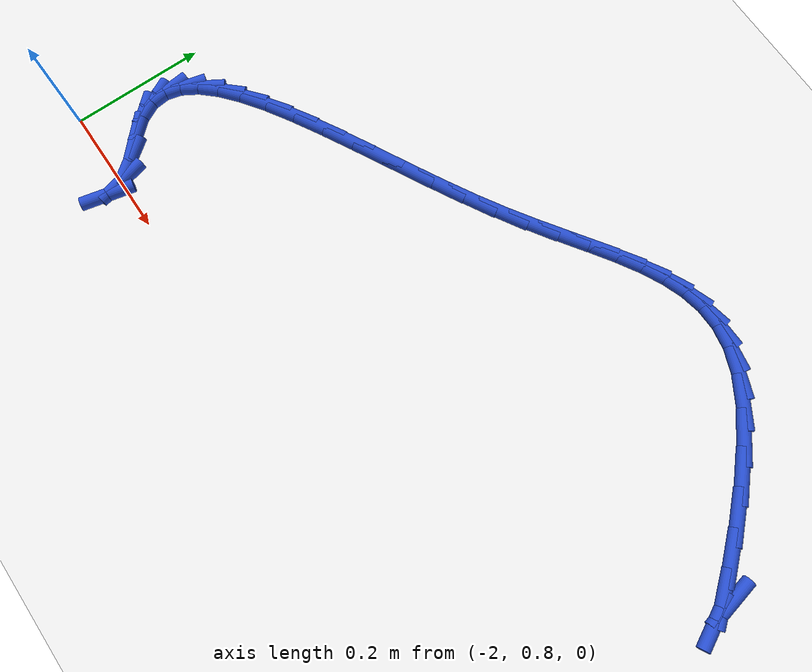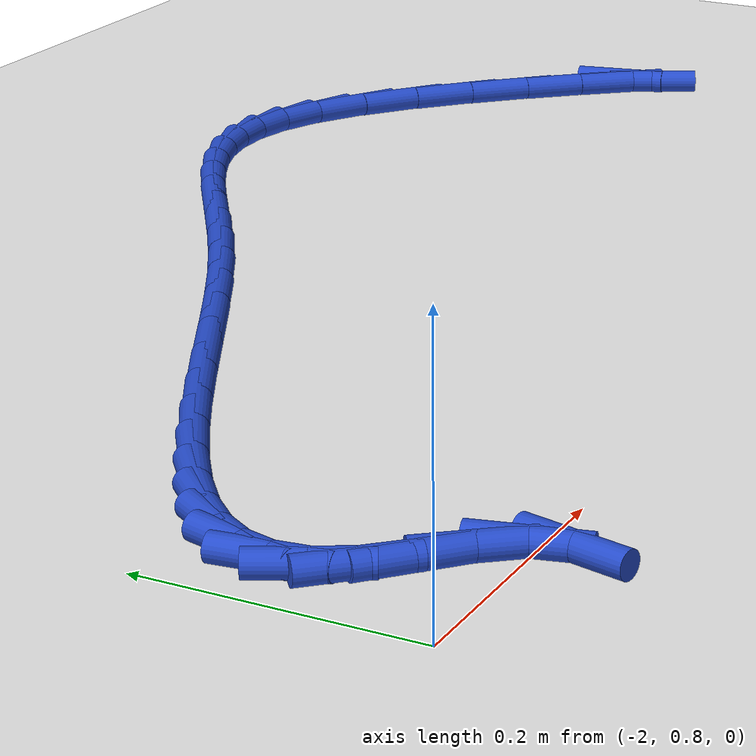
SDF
<sdf version="1.6">
 <world name="default">
  <model name="ground_plane">
   <static>1</static>
   <link name="link">
    <collision name="collision">
     <geometry><plane><normal>0 0 1</normal><size>100 100</size></plane></geometry>
     <surface><friction><ode><mu>100</mu><mu2>50</mu2></ode></friction></surface>
    </collision>
    <visual name="visual">
     <cast_shadows>0</cast_shadows>
     <geometry><plane><normal>0 0 1</normal><size>100 100</size></plane></geometry>
     <material>
      <script><uri>file://media/materials/scripts/gazebo.material</uri><name>Gazebo/WhiteGlow</name></script>
     </material>
    </visual>
   </link>
  </model>
  <model name="line">
   <link name="link_48">
    <pose>-0.9167478533488701 1.1537578580263017 0.01 0 1.57 -1.3605881898114365</pose>
    <collision name="collision">
     <geometry><cylinder><radius>0.01</radius><length>0.08</length></cylinder></geometry>
    </collision>
    <visual name="visual">
     <material>
      <script><name>Gazebo/Blue</name><uri>file://media/materials/scripts/gazebo.material</uri></script>
     </material>
     <geometry><cylinder><radius>0.01</radius><length>0.08</length></cylinder></geometry>
    </visual>
   </link>
   <link name="link_49">
    <pose>-0.9104036037454868 1.124022911377311 0.01 0 1.57 -1.0990846913617078</pose>
    <collision name="collision">
     <geometry><cylinder><radius>0.01</radius><length>0.08</length></cylinder></geometry>
    </collision>
    <visual name="visual">
     <material>
      <script><name>Gazebo/Blue</name><uri>file://media/materials/scripts/gazebo.material</uri></script>
     </material>
     <geometry><cylinder><radius>0.01</radius><length>0.08</length></cylinder></geometry>
    </visual>
   </link>
   <link name="link_59">
    <pose>-0.9263351295932759 1.1499166084896524 0.01 0 1.57 -0.8809924382866111</pose>
    <collision name="collision">
     <geometry><cylinder><radius>0.01</radius><length>0.08</length></cylinder></geometry>
    </collision>
    <visual name="visual">
     <material>
      <script><name>Gazebo/Blue</name><uri>file://media/materials/scripts/gazebo.material</uri></script>
     </material>
     <geometry><cylinder><radius>0.01</radius><length>0.08</length></cylinder></geometry>
    </visual>
   </link>
   <link name="link_60">
    <pose>-0.9600480873910072 1.1907804797849026 0.01 0 1.57 -0.8454182919945205</pose>
    <collision name="collision">
     <geometry><cylinder><radius>0.01</radius><length>0.08</length></cylinder></geometry>
    </collision>
    <visual name="visual">
     <material>
      <script><name>Gazebo/Blue</name><uri>file://media/materials/scripts/gazebo.material</uri></script>
     </material>
     <geometry><cylinder><radius>0.01</radius><length>0.08</length></cylinder></geometry>
    </visual>
   </link>
   <link name="link_61">
    <pose>-0.9963809403602805 1.2317591610567717 0.01 0 1.57 -0.8013040010850668</pose>
    <collision name="collision">
     <geometry><cylinder><radius>0.01</radius><length>0.08</length></cylinder></geometry>
    </collision>
    <visual name="visual">
     <material>
      <script><name>Gazebo/Blue</name><uri>file://media/materials/scripts/gazebo.material</uri></script>
     </material>
     <geometry><cylinder><radius>0.01</radius><length>0.08</length></cylinder></geometry>
    </visual>
   </link>
   <link name="link_62">
    <pose>-1.0343130611836548 1.270917574828007 0.01 0 1.57 -0.7433781073934148</pose>
    <collision name="collision">
     <geometry><cylinder><radius>0.01</radius><length>0.08</length></cylinder></geometry>
    </collision>
    <visual name="visual">
     <material>
      <script><name>Gazebo/Blue</name><uri>file://media/materials/scripts/gazebo.material</uri></script>
     </material>
     <geometry><cylinder><radius>0.01</radius><length>0.08</length></cylinder></geometry>
    </visual>
   </link>
   <link name="link_63">
    <pose>-1.072823822543691 1.3063206436213581 0.01 0 1.57 -0.6627365604325098</pose>
    <collision name="collision">
     <geometry><cylinder><radius>0.01</radius><length>0.08</length></cylinder></geometry>
    </collision>
    <visual name="visual">
     <material>
      <script><name>Gazebo/Blue</name><uri>file://media/materials/scripts/gazebo.material</uri></script>
     </material>
     <geometry><cylinder><radius>0.01</radius><length>0.08</length></cylinder></geometry>
    </visual>
   </link>
   <link name="link_64">
    <pose>-1.1108925971229486 1.3360332899595744 0.01 0 1.57 -0.5434095359581331</pose>
    <collision name="collision">
     <geometry><cylinder><radius>0.01</radius><length>0.08</length></cylinder></geometry>
    </collision>
    <visual name="visual">
     <material>
      <script><name>Gazebo/Blue</name><uri>file://media/materials/scripts/gazebo.material</uri></script>
     </material>
     <geometry><cylinder><radius>0.01</radius><length>0.08</length></cylinder></geometry>
    </visual>
   </link>
   <link name="link_65">
    <pose>-1.1475184767681623 1.3581580231236203 0.01 0 1.57 -0.3784171484410555</pose>
    <collision name="collision">
     <geometry><cylinder><radius>0.01</radius><length>0.08</length></cylinder></geometry>
    </collision>
    <visual name="visual">
     <material>
      <script><name>Gazebo/Blue</name><uri>file://media/materials/scripts/gazebo.material</uri></script>
     </material>
     <geometry><cylinder><radius>0.01</radius><length>0.08</length></cylinder></geometry>
    </visual>
   </link>
   <link name="link_66">
    <pose>-1.182330791656989 1.3719986515750053 0.01 0 1.57 -0.18613815783827042</pose>
    <collision name="collision">
     <geometry><cylinder><radius>0.01</radius><length>0.08</length></cylinder></geometry>
    </collision>
    <visual name="visual">
     <material>
      <script><name>Gazebo/Blue</name><uri>file://media/materials/scripts/gazebo.material</uri></script>
     </material>
     <geometry><cylinder><radius>0.01</radius><length>0.08</length></cylinder></geometry>
    </visual>
   </link>
   <link name="link_67">
    <pose>-1.2157064197040677 1.3782838867679512 0.01 0 1.57 0.014175235118178298</pose>
    <collision name="collision">
     <geometry><cylinder><radius>0.01</radius><length>0.08</length></cylinder></geometry>
    </collision>
    <visual name="visual">
     <material>
      <script><name>Gazebo/Blue</name><uri>file://media/materials/scripts/gazebo.material</uri></script>
     </material>
     <geometry><cylinder><radius>0.01</radius><length>0.08</length></cylinder></geometry>
    </visual>
   </link>
   <link name="link_68">
    <pose>-1.248065634384868 1.377825156565865 0.01 0 1.57 0.19856539048404523</pose>
    <collision name="collision">
     <geometry><cylinder><radius>0.01</radius><length>0.08</length></cylinder></geometry>
    </collision>
    <visual name="visual">
     <material>
      <script><name>Gazebo/Blue</name><uri>file://media/materials/scripts/gazebo.material</uri></script>
     </material>
     <geometry><cylinder><radius>0.01</radius><length>0.08</length></cylinder></geometry>
    </visual>
   </link>
   <link name="link_69">
    <pose>-1.2798287091748588 1.371433888832153 0.01 0 1.57 0.3495011470274727</pose>
    <collision name="collision">
     <geometry><cylinder><radius>0.01</radius><length>0.08</length></cylinder></geometry>
    </collision>
    <visual name="visual">
     <material>
      <script><name>Gazebo/Blue</name><uri>file://media/materials/scripts/gazebo.material</uri></script>
     </material>
     <geometry><cylinder><radius>0.01</radius><length>0.08</length></cylinder></geometry>
    </visual>
   </link>
   <link name="link_70">
    <pose>-1.3114159175495104 1.3599215114302228 0.01 0 1.57 0.4612887238114414</pose>
    <collision name="collision">
     <geometry><cylinder><radius>0.01</radius><length>0.08</length></cylinder></geometry>
    </collision>
    <visual name="visual">
     <material>
      <script><name>Gazebo/Blue</name><uri>file://media/materials/scripts/gazebo.material</uri></script>
     </material>
     <geometry><cylinder><radius>0.01</radius><length>0.08</length></cylinder></geometry>
    </visual>
   </link>
   <link name="link_71">
    <pose>-1.3432475329842921 1.3440994522234815 0.01 0 1.57 0.5363943340565612</pose>
    <collision name="collision">
     <geometry><cylinder><radius>0.01</radius><length>0.08</length></cylinder></geometry>
    </collision>
    <visual name="visual">
     <material>
      <script><name>Gazebo/Blue</name><uri>file://media/materials/scripts/gazebo.material</uri></script>
     </material>
     <geometry><cylinder><radius>0.01</radius><length>0.08</length></cylinder></geometry>
    </visual>
   </link>
   <link name="link_72">
    <pose>-1.3757438289546742 1.3247791390753352 0.01 0 1.57 0.580120079423631</pose>
    <collision name="collision">
     <geometry><cylinder><radius>0.01</radius><length>0.08</length></cylinder></geometry>
    </collision>
    <visual name="visual">
     <material>
      <script><name>Gazebo/Blue</name><uri>file://media/materials/scripts/gazebo.material</uri></script>
     </material>
     <geometry><cylinder><radius>0.01</radius><length>0.08</length></cylinder></geometry>
    </visual>
   </link>
   <link name="link_73">
    <pose>-1.4093250789361251 1.3027719998491927 0.01 0 1.57 0.5976390452263526</pose>
    <collision name="collision">
     <geometry><cylinder><radius>0.01</radius><length>0.08</length></cylinder></geometry>
    </collision>
    <visual name="visual">
     <material>
      <script><name>Gazebo/Blue</name><uri>file://media/materials/scripts/gazebo.material</uri></script>
     </material>
     <geometry><cylinder><radius>0.01</radius><length>0.08</length></cylinder></geometry>
    </visual>
   </link>
   <link name="link_74">
    <pose>-1.4444115564041156 1.2788894624084588 0.01 0 1.57 0.5930704271386178</pose>
    <collision name="collision">
     <geometry><cylinder><radius>0.01</radius><length>0.08</length></cylinder></geometry>
    </collision>
    <visual name="visual">
     <material>
      <script><name>Gazebo/Blue</name><uri>file://media/materials/scripts/gazebo.material</uri></script>
     </material>
     <geometry><cylinder><radius>0.01</radius><length>0.08</length></cylinder></geometry>
    </visual>
   </link>
   <link name="link_75">
    <pose>-1.481423534834114 1.253942954616542 0.01 0 1.57 0.5694950135395905</pose>
    <collision name="collision">
     <geometry><cylinder><radius>0.01</radius><length>0.08</length></cylinder></geometry>
    </collision>
    <visual name="visual">
     <material>
      <script><name>Gazebo/Blue</name><uri>file://media/materials/scripts/gazebo.material</uri></script>
     </material>
     <geometry><cylinder><radius>0.01</radius><length>0.08</length></cylinder></geometry>
    </visual>
   </link>
   <link name="link_76">
    <pose>-1.520781287701591 1.2287439043368489 0.01 0 1.57 0.5334228590717697</pose>
    <collision name="collision">
     <geometry><cylinder><radius>0.01</radius><length>0.08</length></cylinder></geometry>
    </collision>
    <visual name="visual">
     <material>
      <script><name>Gazebo/Blue</name><uri>file://media/materials/scripts/gazebo.material</uri></script>
     </material>
     <geometry><cylinder><radius>0.01</radius><length>0.08</length></cylinder></geometry>
    </visual>
   </link>
   <link name="link_77">
    <pose>-1.5627193597903268 1.2039784581757458 0.01 0 1.57 0.5046314881949909</pose>
    <collision name="collision">
     <geometry><cylinder><radius>0.01</radius><length>0.08</length></cylinder></geometry>
    </collision>
    <visual name="visual">
     <material>
      <script><name>Gazebo/Blue</name><uri>file://media/materials/scripts/gazebo.material</uri></script>
     </material>
     <geometry><cylinder><radius>0.01</radius><length>0.08</length></cylinder></geometry>
    </visual>
   </link>
   <link name="link_78">
    <pose>-1.6065979069327492 1.179742953238595 0.01 0 1.57 0.48690536730247236</pose>
    <collision name="collision">
     <geometry><cylinder><radius>0.01</radius><length>0.08</length></cylinder></geometry>
    </collision>
    <visual name="visual">
     <material>
      <script><name>Gazebo/Blue</name><uri>file://media/materials/scripts/gazebo.material</uri></script>
     </material>
     <geometry><cylinder><radius>0.01</radius><length>0.08</length></cylinder></geometry>
    </visual>
   </link>
   <link name="link_79">
    <pose>-1.6515200025091874 1.155960314475268 0.01 0 1.57 0.47901538798728127</pose>
    <collision name="collision">
     <geometry><cylinder><radius>0.01</radius><length>0.08</length></cylinder></geometry>
    </collision>
    <visual name="visual">
     <material>
      <script><name>Gazebo/Blue</name><uri>file://media/materials/scripts/gazebo.material</uri></script>
     </material>
     <geometry><cylinder><radius>0.01</radius><length>0.08</length></cylinder></geometry>
    </visual>
   </link>
   <link name="link_80">
    <pose>-1.6965886849014034 1.1325534432277389 0.01 0 1.57 0.48063197314140077</pose>
    <collision name="collision">
     <geometry><cylinder><radius>0.01</radius><length>0.08</length></cylinder></geometry>
    </collision>
    <visual name="visual">
     <material>
      <script><name>Gazebo/Blue</name><uri>file://media/materials/scripts/gazebo.material</uri></script>
     </material>
     <geometry><cylinder><radius>0.01</radius><length>0.08</length></cylinder></geometry>
    </visual>
   </link>
   <link name="link_81">
    <pose>-1.7409069924911624 1.1094452408379794 0.01 0 1.57 0.49230403348566804</pose>
    <collision name="collision">
     <geometry><cylinder><radius>0.01</radius><length>0.08</length></cylinder></geometry>
    </collision>
    <visual name="visual">
     <material>
      <script><name>Gazebo/Blue</name><uri>file://media/materials/scripts/gazebo.material</uri></script>
     </material>
     <geometry><cylinder><radius>0.01</radius><length>0.08</length></cylinder></geometry>
    </visual>
   </link>
   <link name="link_82">
    <pose>-1.783577963660225 1.0865586086479626 0.01 0 1.57 0.5156190370436068</pose>
    <collision name="collision">
     <geometry><cylinder><radius>0.01</radius><length>0.08</length></cylinder></geometry>
    </collision>
    <visual name="visual">
     <material>
      <script><name>Gazebo/Blue</name><uri>file://media/materials/scripts/gazebo.material</uri></script>
     </material>
     <geometry><cylinder><radius>0.01</radius><length>0.08</length></cylinder></geometry>
    </visual>
   </link>
   <link name="link_83">
    <pose>-1.823704636790356 1.063816447999661 0.01 0 1.57 0.553612926504866</pose>
    <collision name="collision">
     <geometry><cylinder><radius>0.01</radius><length>0.08</length></cylinder></geometry>
    </collision>
    <visual name="visual">
     <material>
      <script><name>Gazebo/Blue</name><uri>file://media/materials/scripts/gazebo.material</uri></script>
     </material>
     <geometry><cylinder><radius>0.01</radius><length>0.08</length></cylinder></geometry>
    </visual>
   </link>
   <link name="link_84">
    <pose>-1.8603900502633177 1.0411416602350483 0.01 0 1.57 0.6115860541325643</pose>
    <collision name="collision">
     <geometry><cylinder><radius>0.01</radius><length>0.08</length></cylinder></geometry>
    </collision>
    <visual name="visual">
     <material>
      <script><name>Gazebo/Blue</name><uri>file://media/materials/scripts/gazebo.material</uri></script>
     </material>
     <geometry><cylinder><radius>0.01</radius><length>0.08</length></cylinder></geometry>
    </visual>
   </link>
   <link name="link_85">
    <pose>-1.8927372424608733 1.0184571466960963 0.01 0 1.57 0.6986003556916734</pose>
    <collision name="collision">
     <geometry><cylinder><radius>0.01</radius><length>0.08</length></cylinder></geometry>
    </collision>
    <visual name="visual">
     <material>
      <script><name>Gazebo/Blue</name><uri>file://media/materials/scripts/gazebo.material</uri></script>
     </material>
     <geometry><cylinder><radius>0.01</radius><length>0.08</length></cylinder></geometry>
    </visual>
   </link>
   <link name="link_86">
    <pose>-1.9198492517647852 0.9956858087247785 0.01 0 1.57 0.8298954861789504</pose>
    <collision name="collision">
     <geometry><cylinder><radius>0.01</radius><length>0.08</length></cylinder></geometry>
    </collision>
    <visual name="visual">
     <material>
      <script><name>Gazebo/Blue</name><uri>file://media/materials/scripts/gazebo.material</uri></script>
     </material>
     <geometry><cylinder><radius>0.01</radius><length>0.08</length></cylinder></geometry>
    </visual>
   </link>
   <link name="link_87">
    <pose>-1.940829116556817 0.9727505476630675 0.01 0 1.57 1.028950722014643</pose>
    <collision name="collision">
     <geometry><cylinder><radius>0.01</radius><length>0.08</length></cylinder></geometry>
    </collision>
    <visual name="visual">
     <material>
      <script><name>Gazebo/Blue</name><uri>file://media/materials/scripts/gazebo.material</uri></script>
     </material>
     <geometry><cylinder><radius>0.01</radius><length>0.08</length></cylinder></geometry>
    </visual>
   </link>
   <link name="link_88">
    <pose>-1.9547798752187329 0.9495742648529355 0.01 0 1.57 1.3197742720940036</pose>
    <collision name="collision">
     <geometry><cylinder><radius>0.01</radius><length>0.08</length></cylinder></geometry>
    </collision>
    <visual name="visual">
     <material>
      <script><name>Gazebo/Blue</name><uri>file://media/materials/scripts/gazebo.material</uri></script>
     </material>
     <geometry><cylinder><radius>0.01</radius><length>0.08</length></cylinder></geometry>
    </visual>
   </link>
   <link name="link_89">
    <pose>-1.9608045661322941 0.9260798616363562 0.01 0 1.57 -1.4541915429639214</pose>
    <collision name="collision">
     <geometry><cylinder><radius>0.01</radius><length>0.08</length></cylinder></geometry>
    </collision>
    <visual name="visual">
     <material>
      <script><name>Gazebo/Blue</name><uri>file://media/materials/scripts/gazebo.material</uri></script>
     </material>
     <geometry><cylinder><radius>0.01</radius><length>0.08</length></cylinder></geometry>
    </visual>
   </link>
   <link name="link_90">
    <pose>-1.9580062276792642 0.9021902393553016 0.01 0 1.57 -1.0961319438838883</pose>
    <collision name="collision">
     <geometry><cylinder><radius>0.01</radius><length>0.08</length></cylinder></geometry>
    </collision>
    <visual name="visual">
     <material>
      <script><name>Gazebo/Blue</name><uri>file://media/materials/scripts/gazebo.material</uri></script>
     </material>
     <geometry><cylinder><radius>0.01</radius><length>0.08</length></cylinder></geometry>
    </visual>
   </link>
   <link name="link_91">
    <pose>-1.945487898241407 0.8778282993517452 0.01 0 1.57 -0.830276074144917</pose>
    <collision name="collision">
     <geometry><cylinder><radius>0.01</radius><length>0.08</length></cylinder></geometry>
    </collision>
    <visual name="visual">
     <material>
      <script><name>Gazebo/Blue</name><uri>file://media/materials/scripts/gazebo.material</uri></script>
     </material>
     <geometry><cylinder><radius>0.01</radius><length>0.08</length></cylinder></geometry>
    </visual>
   </link>
   <link name="link_92">
    <pose>-1.9227204174576178 0.8529197818086942 0.01 0 1.57 -0.7536083222948584</pose>
    <collision name="collision">
     <geometry><cylinder><radius>0.01</radius><length>0.08</length></cylinder></geometry>
    </collision>
    <visual name="visual">
     <material>
      <script><name>Gazebo/Blue</name><uri>file://media/materials/scripts/gazebo.material</uri></script>
     </material>
     <geometry><cylinder><radius>0.01</radius><length>0.08</length></cylinder></geometry>
    </visual>
   </link>
   <link name="link_93">
    <pose>-1.8955666138188187 0.8274397629021588 0.01 0 1.57 -0.9086942247007627</pose>
    <collision name="collision">
     <geometry><cylinder><radius>0.01</radius><length>0.08</length></cylinder></geometry>
    </collision>
    <visual name="visual">
     <material>
      <script><name>Gazebo/Blue</name><uri>file://media/materials/scripts/gazebo.material</uri></script>
     </material>
     <geometry><cylinder><radius>0.01</radius><length>0.08</length></cylinder></geometry>
    </visual>
   </link>
   <link name="link_94">
    <pose>-1.8752730796302366 0.801405011546565 0.01 0 1.57 -1.336334728648159</pose>
    <collision name="collision">
     <geometry><cylinder><radius>0.01</radius><length>0.08</length></cylinder></geometry>
    </collision>
    <visual name="visual">
     <material>
      <script><name>Gazebo/Blue</name><uri>file://media/materials/scripts/gazebo.material</uri></script>
     </material>
     <geometry><cylinder><radius>0.01</radius><length>0.08</length></cylinder></geometry>
    </visual>
   </link>
   <link name="link_95">
    <pose>-1.868922495736983 0.7748173459397468 0.01 0 1.57 1.3465021309159477</pose>
    <collision name="collision">
     <geometry><cylinder><radius>0.01</radius><length>0.08</length></cylinder></geometry>
    </collision>
    <visual name="visual">
     <material>
      <script><name>Gazebo/Blue</name><uri>file://media/materials/scripts/gazebo.material</uri></script>
     </material>
     <geometry><cylinder><radius>0.01</radius><length>0.08</length></cylinder></geometry>
    </visual>
   </link>
  </model>
 </world>
</sdf>
